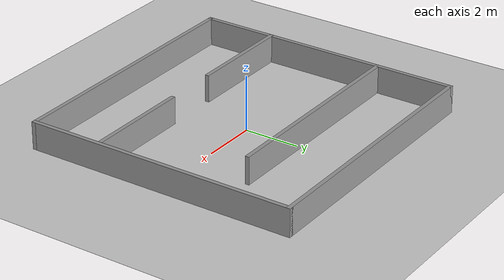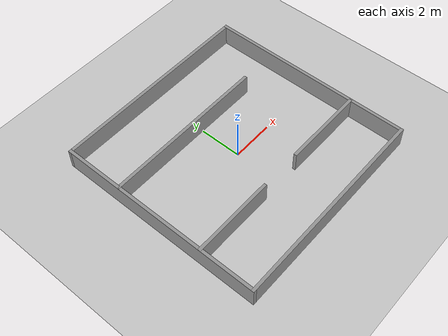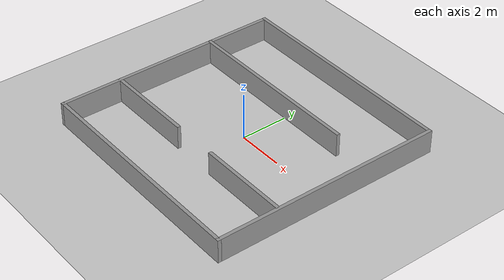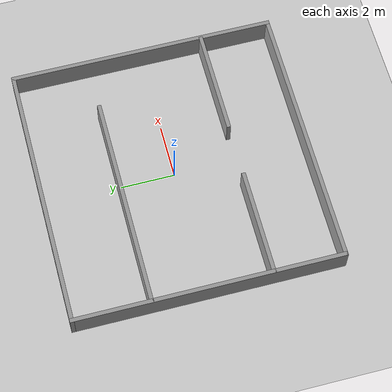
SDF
<sdf version="1.7">
 <world name="default">
  <light name="sun" type="directional">
   <pose>0 0 10 0 -0 0</pose>
   <diffuse>0.8 0.8 0.8 1</diffuse>
   <specular>0.2 0.2 0.2 1</specular>
   <attenuation>
    <range>1000</range>
    <constant>0.9</constant>
    <linear>0.01</linear>
    <quadratic>0.001</quadratic>
   </attenuation>
   <direction>-0.5 0.1 -0.9</direction>
   <spot><inner_angle>0</inner_angle><outer_angle>0</outer_angle><falloff>0</falloff></spot>
  </light>
  <model name="ground_plane">
   <static>1</static>
   <link name="link">
    <collision name="collision">
     <geometry><plane><normal>0 0 1</normal><size>100 100</size></plane></geometry>
     <surface><friction><ode><mu>100</mu><mu2>50</mu2></ode></friction></surface>
    </collision>
    <visual name="visual">
     <cast_shadows>0</cast_shadows>
     <geometry><plane><normal>0 0 1</normal><size>100 100</size></plane></geometry>
     <material>
      <script><uri>file://media/materials/scripts/gazebo.material</uri><name>Gazebo/Grey</name></script>
     </material>
    </visual>
   </link>
  </model>
  <gravity>0 0 -9.8</gravity>
  <magnetic_field>6e-06 2.3e-05 -4.2e-05</magnetic_field>
  <atmosphere type="adiabatic"/>
  <physics type="ode">
   <max_step_size>0.001</max_step_size>
   <real_time_factor>1</real_time_factor>
   <real_time_update_rate>1000</real_time_update_rate>
  </physics>
  <scene><ambient>0.4 0.4 0.4 1</ambient><background>0.7 0.7 0.7 1</background><shadows>1</shadows></scene>
  <spherical_coordinates>
   <surface_model>EARTH_WGS84</surface_model>
   <latitude_deg>0</latitude_deg>
   <longitude_deg>0</longitude_deg>
   <elevation>0</elevation>
   <heading_deg>0</heading_deg>
  </spherical_coordinates>
  <model name="Two_Doors_World">
   <pose>-0.000537 -0.004053 0 0 -0 0</pose>
   <link name="Wall_1">
    <collision name="Wall_1_Collision">
     <geometry><box><size>10 0.15 1</size></box></geometry>
     <pose>0 0 0.5 0 -0 0</pose>
    </collision>
    <visual name="Wall_1_Visual">
     <pose>0 0 0.5 0 -0 0</pose>
     <geometry><box><size>10 0.15 1</size></box></geometry>
     <material>
      <script><uri>file://media/materials/scripts/gazebo.material</uri><name>Gazebo/Grey</name></script>
      <ambient>1 1 1 1</ambient>
     </material>
     <meta><layer>0</layer></meta>
    </visual>
    <pose>-4.925 -0 0 0 -0 -1.5708</pose>
   </link>
   <link name="Wall_14">
    <collision name="Wall_14_Collision">
     <geometry><box><size>4 0.15 1</size></box></geometry>
     <pose>0 0 0.5 0 -0 0</pose>
    </collision>
    <visual name="Wall_14_Visual">
     <pose>0 0 0.5 0 -0 0</pose>
     <geometry><box><size>4 0.15 1</size></box></geometry>
     <material>
      <script><uri>file://media/materials/scripts/gazebo.material</uri><name>Gazebo/Grey</name></script>
      <ambient>1 1 1 1</ambient>
     </material>
     <meta><layer>0</layer></meta>
    </visual>
    <pose>2.942 -2.302 0 0 -0 0</pose>
   </link>
   <link name="Wall_16">
    <collision name="Wall_16_Collision">
     <geometry><box><size>8 0.15 1</size></box></geometry>
     <pose>0 0 0.5 0 -0 0</pose>
    </collision>
    <visual name="Wall_16_Visual">
     <pose>0 0 0.5 0 -0 0</pose>
     <geometry><box><size>8 0.15 1</size></box></geometry>
     <material>
      <script><uri>file://media/materials/scripts/gazebo.material</uri><name>Gazebo/Grey</name></script>
      <ambient>1 1 1 1</ambient>
     </material>
     <meta><layer>0</layer></meta>
    </visual>
    <pose>-0.977 2.098 0 0 -0 0</pose>
   </link>
   <link name="Wall_3">
    <collision name="Wall_3_Collision">
     <geometry><box><size>10 0.15 1</size></box></geometry>
     <pose>0 0 0.5 0 -0 0</pose>
    </collision>
    <visual name="Wall_3_Visual">
     <pose>0 0 0.5 0 -0 0</pose>
     <geometry><box><size>10 0.15 1</size></box></geometry>
     <material>
      <script><uri>file://media/materials/scripts/gazebo.material</uri><name>Gazebo/Grey</name></script>
      <ambient>1 1 1 1</ambient>
     </material>
     <meta><layer>0</layer></meta>
    </visual>
    <pose>0 4.925 0 0 -0 0</pose>
   </link>
   <link name="Wall_4">
    <collision name="Wall_4_Collision">
     <geometry><box><size>10 0.15 1</size></box></geometry>
     <pose>0 0 0.5 0 -0 0</pose>
    </collision>
    <visual name="Wall_4_Visual">
     <pose>0 0 0.5 0 -0 0</pose>
     <geometry><box><size>10 0.15 1</size></box></geometry>
     <material>
      <script><uri>file://media/materials/scripts/gazebo.material</uri><name>Gazebo/Grey</name></script>
      <ambient>1 1 1 1</ambient>
     </material>
     <meta><layer>0</layer></meta>
    </visual>
    <pose>4.925 -0 0 0 -0 -1.5708</pose>
   </link>
   <link name="Wall_5">
    <collision name="Wall_5_Collision">
     <geometry><box><size>10 0.15 1</size></box></geometry>
     <pose>0 0 0.5 0 -0 0</pose>
    </collision>
    <visual name="Wall_5_Visual">
     <pose>0 0 0.5 0 -0 0</pose>
     <geometry><box><size>10 0.15 1</size></box></geometry>
     <material>
      <script><uri>file://media/materials/scripts/gazebo.material</uri><name>Gazebo/Grey</name></script>
      <ambient>1 1 1 1</ambient>
     </material>
     <meta><layer>0</layer></meta>
    </visual>
    <pose>0 -4.925 0 0 -0 3.14159</pose>
   </link>
   <link name="Wall_7">
    <collision name="Wall_7_Collision">
     <geometry><box><size>4 0.15 1</size></box></geometry>
     <pose>0 0 0.5 0 -0 0</pose>
    </collision>
    <visual name="Wall_7_Visual">
     <pose>0 0 0.5 0 -0 0</pose>
     <geometry><box><size>4 0.15 1</size></box></geometry>
     <material>
      <script><uri>file://media/materials/scripts/gazebo.material</uri><name>Gazebo/Grey</name></script>
      <ambient>1 1 1 1</ambient>
     </material>
     <meta><layer>0</layer></meta>
    </visual>
    <pose>-2.995 -2.302 0 0 -0 0</pose>
   </link>
   <static>1</static>
  </model>
 </world>
</sdf>
